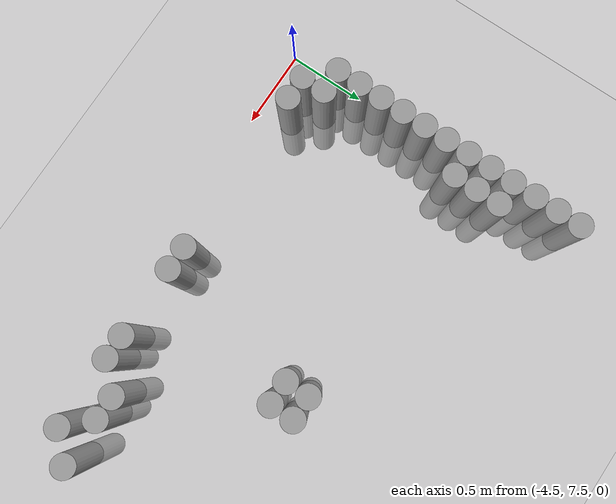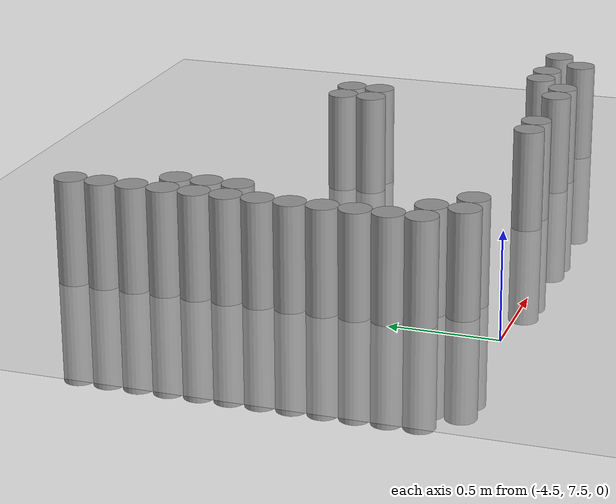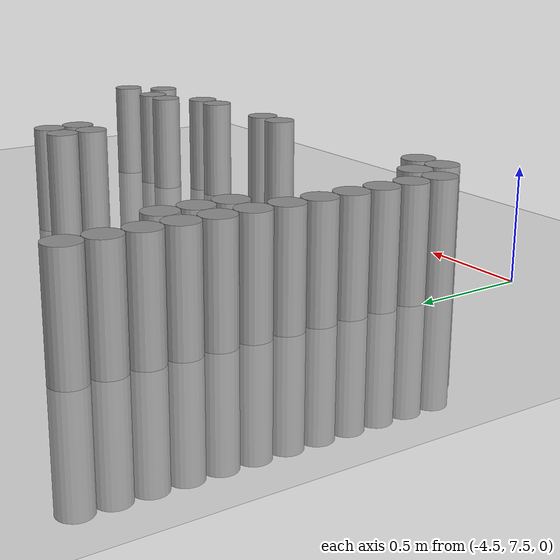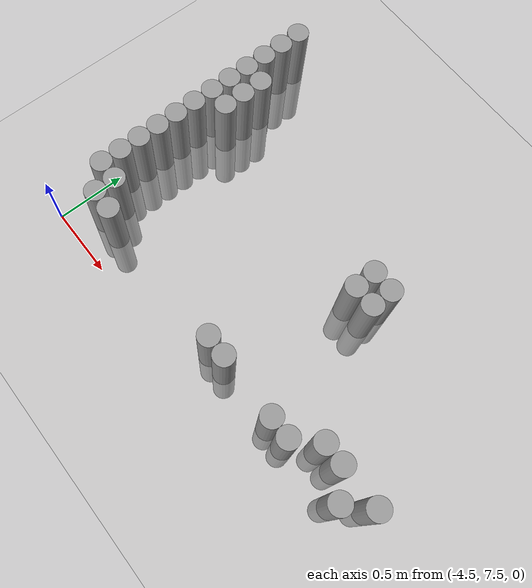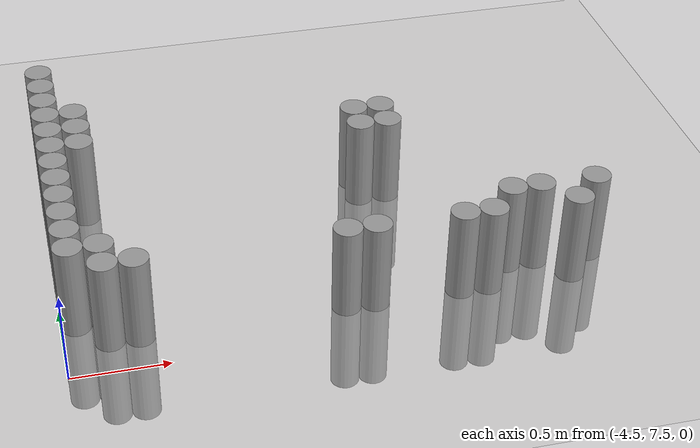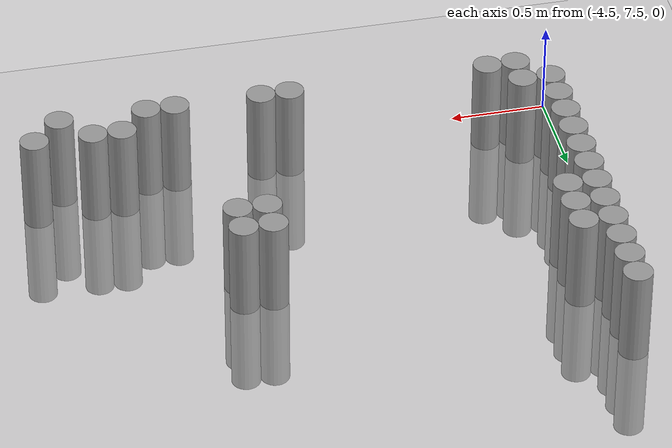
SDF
<sdf version="1.6">
 <world name="default">
  <model name="ground_plane">
   <static>1</static>
   <static>1</static>
   <link name="link">
    <collision name="collision">
     <geometry><plane><normal>0 0 1</normal><size>100 100</size></plane></geometry>
     <surface><friction><ode><mu>100</mu><mu2>50</mu2></ode></friction></surface>
    </collision>
    <visual name="visual">
     <cast_shadows>0</cast_shadows>
     <geometry><plane><normal>0 0 1</normal><size>100 100</size></plane></geometry>
     <material>
      <script><uri>file://media/materials/scripts/gazebo.material</uri><name>Gazebo/Grey</name></script>
     </material>
    </visual>
   </link>
  </model>
  <model name="unit_cylinder_114">
   <static>1</static>
   <pose>-4.425000 7.875000 0.000000 0.000000 0.000000 0.000000</pose>
   <link name="link">
    <inertial>
     <mass>1</mass>
     <inertia><ixx>0.145833</ixx><ixy>0</ixy><ixz>0</ixz><iyy>0.145833</iyy><iyz>0</iyz><izz>0.125</izz></inertia>
    </inertial>
    <collision name="collision">
     <geometry><cylinder><radius>0.075000</radius><length>1</length></cylinder></geometry>
    </collision>
    <visual name="visual">
     <geometry><cylinder><radius>0.075000</radius><length>1</length></cylinder></geometry>
     <material>
      <script><name>Gazebo/Grey</name><uri>file://media/materials/scripts/gazebo.material</uri></script>
     </material>
    </visual>
   </link>
  </model>
  <model name="unit_cylinder_115">
   <static>1</static>
   <pose>-4.425000 8.025000 0.000000 0.000000 0.000000 0.000000</pose>
   <link name="link">
    <inertial>
     <mass>1</mass>
     <inertia><ixx>0.145833</ixx><ixy>0</ixy><ixz>0</ixz><iyy>0.145833</iyy><iyz>0</iyz><izz>0.125</izz></inertia>
    </inertial>
    <collision name="collision">
     <geometry><cylinder><radius>0.075000</radius><length>1</length></cylinder></geometry>
    </collision>
    <visual name="visual">
     <geometry><cylinder><radius>0.075000</radius><length>1</length></cylinder></geometry>
     <material>
      <script><name>Gazebo/Grey</name><uri>file://media/materials/scripts/gazebo.material</uri></script>
     </material>
    </visual>
   </link>
  </model>
  <model name="unit_cylinder_116">
   <static>1</static>
   <pose>-4.425000 8.175000 0.000000 0.000000 0.000000 0.000000</pose>
   <link name="link">
    <inertial>
     <mass>1</mass>
     <inertia><ixx>0.145833</ixx><ixy>0</ixy><ixz>0</ixz><iyy>0.145833</iyy><iyz>0</iyz><izz>0.125</izz></inertia>
    </inertial>
    <collision name="collision">
     <geometry><cylinder><radius>0.075000</radius><length>1</length></cylinder></geometry>
    </collision>
    <visual name="visual">
     <geometry><cylinder><radius>0.075000</radius><length>1</length></cylinder></geometry>
     <material>
      <script><name>Gazebo/Grey</name><uri>file://media/materials/scripts/gazebo.material</uri></script>
     </material>
    </visual>
   </link>
  </model>
  <model name="unit_cylinder_117">
   <static>1</static>
   <pose>-4.425000 8.325000 0.000000 0.000000 0.000000 0.000000</pose>
   <link name="link">
    <inertial>
     <mass>1</mass>
     <inertia><ixx>0.145833</ixx><ixy>0</ixy><ixz>0</ixz><iyy>0.145833</iyy><iyz>0</iyz><izz>0.125</izz></inertia>
    </inertial>
    <collision name="collision">
     <geometry><cylinder><radius>0.075000</radius><length>1</length></cylinder></geometry>
    </collision>
    <visual name="visual">
     <geometry><cylinder><radius>0.075000</radius><length>1</length></cylinder></geometry>
     <material>
      <script><name>Gazebo/Grey</name><uri>file://media/materials/scripts/gazebo.material</uri></script>
     </material>
    </visual>
   </link>
  </model>
  <model name="unit_cylinder_118">
   <static>1</static>
   <pose>-4.425000 8.475000 0.000000 0.000000 0.000000 0.000000</pose>
   <link name="link">
    <inertial>
     <mass>1</mass>
     <inertia><ixx>0.145833</ixx><ixy>0</ixy><ixz>0</ixz><iyy>0.145833</iyy><iyz>0</iyz><izz>0.125</izz></inertia>
    </inertial>
    <collision name="collision">
     <geometry><cylinder><radius>0.075000</radius><length>1</length></cylinder></geometry>
    </collision>
    <visual name="visual">
     <geometry><cylinder><radius>0.075000</radius><length>1</length></cylinder></geometry>
     <material>
      <script><name>Gazebo/Grey</name><uri>file://media/materials/scripts/gazebo.material</uri></script>
     </material>
    </visual>
   </link>
  </model>
  <model name="unit_cylinder_119">
   <static>1</static>
   <pose>-4.425000 8.625000 0.000000 0.000000 0.000000 0.000000</pose>
   <link name="link">
    <inertial>
     <mass>1</mass>
     <inertia><ixx>0.145833</ixx><ixy>0</ixy><ixz>0</ixz><iyy>0.145833</iyy><iyz>0</iyz><izz>0.125</izz></inertia>
    </inertial>
    <collision name="collision">
     <geometry><cylinder><radius>0.075000</radius><length>1</length></cylinder></geometry>
    </collision>
    <visual name="visual">
     <geometry><cylinder><radius>0.075000</radius><length>1</length></cylinder></geometry>
     <material>
      <script><name>Gazebo/Grey</name><uri>file://media/materials/scripts/gazebo.material</uri></script>
     </material>
    </visual>
   </link>
  </model>
  <model name="unit_cylinder_120">
   <static>1</static>
   <pose>-4.425000 8.775000 0.000000 0.000000 0.000000 0.000000</pose>
   <link name="link">
    <inertial>
     <mass>1</mass>
     <inertia><ixx>0.145833</ixx><ixy>0</ixy><ixz>0</ixz><iyy>0.145833</iyy><iyz>0</iyz><izz>0.125</izz></inertia>
    </inertial>
    <collision name="collision">
     <geometry><cylinder><radius>0.075000</radius><length>1</length></cylinder></geometry>
    </collision>
    <visual name="visual">
     <geometry><cylinder><radius>0.075000</radius><length>1</length></cylinder></geometry>
     <material>
      <script><name>Gazebo/Grey</name><uri>file://media/materials/scripts/gazebo.material</uri></script>
     </material>
    </visual>
   </link>
  </model>
  <model name="unit_cylinder_121">
   <static>1</static>
   <pose>-4.425000 8.925000 0.000000 0.000000 0.000000 0.000000</pose>
   <link name="link">
    <inertial>
     <mass>1</mass>
     <inertia><ixx>0.145833</ixx><ixy>0</ixy><ixz>0</ixz><iyy>0.145833</iyy><iyz>0</iyz><izz>0.125</izz></inertia>
    </inertial>
    <collision name="collision">
     <geometry><cylinder><radius>0.075000</radius><length>1</length></cylinder></geometry>
    </collision>
    <visual name="visual">
     <geometry><cylinder><radius>0.075000</radius><length>1</length></cylinder></geometry>
     <material>
      <script><name>Gazebo/Grey</name><uri>file://media/materials/scripts/gazebo.material</uri></script>
     </material>
    </visual>
   </link>
  </model>
  <model name="unit_cylinder_122">
   <static>1</static>
   <pose>-4.425000 9.075000 0.000000 0.000000 0.000000 0.000000</pose>
   <link name="link">
    <inertial>
     <mass>1</mass>
     <inertia><ixx>0.145833</ixx><ixy>0</ixy><ixz>0</ixz><iyy>0.145833</iyy><iyz>0</iyz><izz>0.125</izz></inertia>
    </inertial>
    <collision name="collision">
     <geometry><cylinder><radius>0.075000</radius><length>1</length></cylinder></geometry>
    </collision>
    <visual name="visual">
     <geometry><cylinder><radius>0.075000</radius><length>1</length></cylinder></geometry>
     <material>
      <script><name>Gazebo/Grey</name><uri>file://media/materials/scripts/gazebo.material</uri></script>
     </material>
    </visual>
   </link>
  </model>
  <model name="unit_cylinder_123">
   <static>1</static>
   <pose>-4.425000 9.225000 0.000000 0.000000 0.000000 0.000000</pose>
   <link name="link">
    <inertial>
     <mass>1</mass>
     <inertia><ixx>0.145833</ixx><ixy>0</ixy><ixz>0</ixz><iyy>0.145833</iyy><iyz>0</iyz><izz>0.125</izz></inertia>
    </inertial>
    <collision name="collision">
     <geometry><cylinder><radius>0.075000</radius><length>1</length></cylinder></geometry>
    </collision>
    <visual name="visual">
     <geometry><cylinder><radius>0.075000</radius><length>1</length></cylinder></geometry>
     <material>
      <script><name>Gazebo/Grey</name><uri>file://media/materials/scripts/gazebo.material</uri></script>
     </material>
    </visual>
   </link>
  </model>
  <model name="unit_cylinder_124">
   <static>1</static>
   <pose>-4.425000 9.375000 0.000000 0.000000 0.000000 0.000000</pose>
   <link name="link">
    <inertial>
     <mass>1</mass>
     <inertia><ixx>0.145833</ixx><ixy>0</ixy><ixz>0</ixz><iyy>0.145833</iyy><iyz>0</iyz><izz>0.125</izz></inertia>
    </inertial>
    <collision name="collision">
     <geometry><cylinder><radius>0.075000</radius><length>1</length></cylinder></geometry>
    </collision>
    <visual name="visual">
     <geometry><cylinder><radius>0.075000</radius><length>1</length></cylinder></geometry>
     <material>
      <script><name>Gazebo/Grey</name><uri>file://media/materials/scripts/gazebo.material</uri></script>
     </material>
    </visual>
   </link>
  </model>
  <model name="unit_cylinder_125">
   <static>1</static>
   <pose>-4.425000 9.525000 0.000000 0.000000 0.000000 0.000000</pose>
   <link name="link">
    <inertial>
     <mass>1</mass>
     <inertia><ixx>0.145833</ixx><ixy>0</ixy><ixz>0</ixz><iyy>0.145833</iyy><iyz>0</iyz><izz>0.125</izz></inertia>
    </inertial>
    <collision name="collision">
     <geometry><cylinder><radius>0.075000</radius><length>1</length></cylinder></geometry>
    </collision>
    <visual name="visual">
     <geometry><cylinder><radius>0.075000</radius><length>1</length></cylinder></geometry>
     <material>
      <script><name>Gazebo/Grey</name><uri>file://media/materials/scripts/gazebo.material</uri></script>
     </material>
    </visual>
   </link>
  </model>
  <model name="unit_cylinder_132">
   <static>1</static>
   <pose>-4.275000 7.725000 0.000000 0.000000 0.000000 0.000000</pose>
   <link name="link">
    <inertial>
     <mass>1</mass>
     <inertia><ixx>0.145833</ixx><ixy>0</ixy><ixz>0</ixz><iyy>0.145833</iyy><iyz>0</iyz><izz>0.125</izz></inertia>
    </inertial>
    <collision name="collision">
     <geometry><cylinder><radius>0.075000</radius><length>1</length></cylinder></geometry>
    </collision>
    <visual name="visual">
     <geometry><cylinder><radius>0.075000</radius><length>1</length></cylinder></geometry>
     <material>
      <script><name>Gazebo/Grey</name><uri>file://media/materials/scripts/gazebo.material</uri></script>
     </material>
    </visual>
   </link>
  </model>
  <model name="unit_cylinder_133">
   <static>1</static>
   <pose>-4.275000 7.875000 0.000000 0.000000 0.000000 0.000000</pose>
   <link name="link">
    <inertial>
     <mass>1</mass>
     <inertia><ixx>0.145833</ixx><ixy>0</ixy><ixz>0</ixz><iyy>0.145833</iyy><iyz>0</iyz><izz>0.125</izz></inertia>
    </inertial>
    <collision name="collision">
     <geometry><cylinder><radius>0.075000</radius><length>1</length></cylinder></geometry>
    </collision>
    <visual name="visual">
     <geometry><cylinder><radius>0.075000</radius><length>1</length></cylinder></geometry>
     <material>
      <script><name>Gazebo/Grey</name><uri>file://media/materials/scripts/gazebo.material</uri></script>
     </material>
    </visual>
   </link>
  </model>
  <model name="unit_cylinder_134">
   <static>1</static>
   <pose>-4.275000 8.775000 0.000000 0.000000 0.000000 0.000000</pose>
   <link name="link">
    <inertial>
     <mass>1</mass>
     <inertia><ixx>0.145833</ixx><ixy>0</ixy><ixz>0</ixz><iyy>0.145833</iyy><iyz>0</iyz><izz>0.125</izz></inertia>
    </inertial>
    <collision name="collision">
     <geometry><cylinder><radius>0.075000</radius><length>1</length></cylinder></geometry>
    </collision>
    <visual name="visual">
     <geometry><cylinder><radius>0.075000</radius><length>1</length></cylinder></geometry>
     <material>
      <script><name>Gazebo/Grey</name><uri>file://media/materials/scripts/gazebo.material</uri></script>
     </material>
    </visual>
   </link>
  </model>
  <model name="unit_cylinder_135">
   <static>1</static>
   <pose>-4.275000 8.925000 0.000000 0.000000 0.000000 0.000000</pose>
   <link name="link">
    <inertial>
     <mass>1</mass>
     <inertia><ixx>0.145833</ixx><ixy>0</ixy><ixz>0</ixz><iyy>0.145833</iyy><iyz>0</iyz><izz>0.125</izz></inertia>
    </inertial>
    <collision name="collision">
     <geometry><cylinder><radius>0.075000</radius><length>1</length></cylinder></geometry>
    </collision>
    <visual name="visual">
     <geometry><cylinder><radius>0.075000</radius><length>1</length></cylinder></geometry>
     <material>
      <script><name>Gazebo/Grey</name><uri>file://media/materials/scripts/gazebo.material</uri></script>
     </material>
    </visual>
   </link>
  </model>
  <model name="unit_cylinder_136">
   <static>1</static>
   <pose>-4.275000 9.075000 0.000000 0.000000 0.000000 0.000000</pose>
   <link name="link">
    <inertial>
     <mass>1</mass>
     <inertia><ixx>0.145833</ixx><ixy>0</ixy><ixz>0</ixz><iyy>0.145833</iyy><iyz>0</iyz><izz>0.125</izz></inertia>
    </inertial>
    <collision name="collision">
     <geometry><cylinder><radius>0.075000</radius><length>1</length></cylinder></geometry>
    </collision>
    <visual name="visual">
     <geometry><cylinder><radius>0.075000</radius><length>1</length></cylinder></geometry>
     <material>
      <script><name>Gazebo/Grey</name><uri>file://media/materials/scripts/gazebo.material</uri></script>
     </material>
    </visual>
   </link>
  </model>
  <model name="unit_cylinder_139">
   <static>1</static>
   <pose>-4.125000 7.725000 0.000000 0.000000 0.000000 0.000000</pose>
   <link name="link">
    <inertial>
     <mass>1</mass>
     <inertia><ixx>0.145833</ixx><ixy>0</ixy><ixz>0</ixz><iyy>0.145833</iyy><iyz>0</iyz><izz>0.125</izz></inertia>
    </inertial>
    <collision name="collision">
     <geometry><cylinder><radius>0.075000</radius><length>1</length></cylinder></geometry>
    </collision>
    <visual name="visual">
     <geometry><cylinder><radius>0.075000</radius><length>1</length></cylinder></geometry>
     <material>
      <script><name>Gazebo/Grey</name><uri>file://media/materials/scripts/gazebo.material</uri></script>
     </material>
    </visual>
   </link>
  </model>
  <model name="unit_cylinder_142">
   <static>1</static>
   <pose>-3.075000 7.725000 0.000000 0.000000 0.000000 0.000000</pose>
   <link name="link">
    <inertial>
     <mass>1</mass>
     <inertia><ixx>0.145833</ixx><ixy>0</ixy><ixz>0</ixz><iyy>0.145833</iyy><iyz>0</iyz><izz>0.125</izz></inertia>
    </inertial>
    <collision name="collision">
     <geometry><cylinder><radius>0.075000</radius><length>1</length></cylinder></geometry>
    </collision>
    <visual name="visual">
     <geometry><cylinder><radius>0.075000</radius><length>1</length></cylinder></geometry>
     <material>
      <script><name>Gazebo/Grey</name><uri>file://media/materials/scripts/gazebo.material</uri></script>
     </material>
    </visual>
   </link>
  </model>
  <model name="unit_cylinder_143">
   <static>1</static>
   <pose>-2.925000 7.725000 0.000000 0.000000 0.000000 0.000000</pose>
   <link name="link">
    <inertial>
     <mass>1</mass>
     <inertia><ixx>0.145833</ixx><ixy>0</ixy><ixz>0</ixz><iyy>0.145833</iyy><iyz>0</iyz><izz>0.125</izz></inertia>
    </inertial>
    <collision name="collision">
     <geometry><cylinder><radius>0.075000</radius><length>1</length></cylinder></geometry>
    </collision>
    <visual name="visual">
     <geometry><cylinder><radius>0.075000</radius><length>1</length></cylinder></geometry>
     <material>
      <script><name>Gazebo/Grey</name><uri>file://media/materials/scripts/gazebo.material</uri></script>
     </material>
    </visual>
   </link>
  </model>
  <model name="unit_cylinder_147">
   <static>1</static>
   <pose>-2.775000 8.625000 0.000000 0.000000 0.000000 0.000000</pose>
   <link name="link">
    <inertial>
     <mass>1</mass>
     <inertia><ixx>0.145833</ixx><ixy>0</ixy><ixz>0</ixz><iyy>0.145833</iyy><iyz>0</iyz><izz>0.125</izz></inertia>
    </inertial>
    <collision name="collision">
     <geometry><cylinder><radius>0.075000</radius><length>1</length></cylinder></geometry>
    </collision>
    <visual name="visual">
     <geometry><cylinder><radius>0.075000</radius><length>1</length></cylinder></geometry>
     <material>
      <script><name>Gazebo/Grey</name><uri>file://media/materials/scripts/gazebo.material</uri></script>
     </material>
    </visual>
   </link>
  </model>
  <model name="unit_cylinder_148">
   <static>1</static>
   <pose>-2.775000 8.775000 0.000000 0.000000 0.000000 0.000000</pose>
   <link name="link">
    <inertial>
     <mass>1</mass>
     <inertia><ixx>0.145833</ixx><ixy>0</ixy><ixz>0</ixz><iyy>0.145833</iyy><iyz>0</iyz><izz>0.125</izz></inertia>
    </inertial>
    <collision name="collision">
     <geometry><cylinder><radius>0.075000</radius><length>1</length></cylinder></geometry>
    </collision>
    <visual name="visual">
     <geometry><cylinder><radius>0.075000</radius><length>1</length></cylinder></geometry>
     <material>
      <script><name>Gazebo/Grey</name><uri>file://media/materials/scripts/gazebo.material</uri></script>
     </material>
    </visual>
   </link>
  </model>
  <model name="unit_cylinder_153">
   <static>1</static>
   <pose>-2.625000 8.625000 0.000000 0.000000 0.000000 0.000000</pose>
   <link name="link">
    <inertial>
     <mass>1</mass>
     <inertia><ixx>0.145833</ixx><ixy>0</ixy><ixz>0</ixz><iyy>0.145833</iyy><iyz>0</iyz><izz>0.125</izz></inertia>
    </inertial>
    <collision name="collision">
     <geometry><cylinder><radius>0.075000</radius><length>1</length></cylinder></geometry>
    </collision>
    <visual name="visual">
     <geometry><cylinder><radius>0.075000</radius><length>1</length></cylinder></geometry>
     <material>
      <script><name>Gazebo/Grey</name><uri>file://media/materials/scripts/gazebo.material</uri></script>
     </material>
    </visual>
   </link>
  </model>
  <model name="unit_cylinder_154">
   <static>1</static>
   <pose>-2.625000 8.775000 0.000000 0.000000 0.000000 0.000000</pose>
   <link name="link">
    <inertial>
     <mass>1</mass>
     <inertia><ixx>0.145833</ixx><ixy>0</ixy><ixz>0</ixz><iyy>0.145833</iyy><iyz>0</iyz><izz>0.125</izz></inertia>
    </inertial>
    <collision name="collision">
     <geometry><cylinder><radius>0.075000</radius><length>1</length></cylinder></geometry>
    </collision>
    <visual name="visual">
     <geometry><cylinder><radius>0.075000</radius><length>1</length></cylinder></geometry>
     <material>
      <script><name>Gazebo/Grey</name><uri>file://media/materials/scripts/gazebo.material</uri></script>
     </material>
    </visual>
   </link>
  </model>
  <model name="unit_cylinder_157">
   <static>1</static>
   <pose>-2.475000 7.725000 0.000000 0.000000 0.000000 0.000000</pose>
   <link name="link">
    <inertial>
     <mass>1</mass>
     <inertia><ixx>0.145833</ixx><ixy>0</ixy><ixz>0</ixz><iyy>0.145833</iyy><iyz>0</iyz><izz>0.125</izz></inertia>
    </inertial>
    <collision name="collision">
     <geometry><cylinder><radius>0.075000</radius><length>1</length></cylinder></geometry>
    </collision>
    <visual name="visual">
     <geometry><cylinder><radius>0.075000</radius><length>1</length></cylinder></geometry>
     <material>
      <script><name>Gazebo/Grey</name><uri>file://media/materials/scripts/gazebo.material</uri></script>
     </material>
    </visual>
   </link>
  </model>
  <model name="unit_cylinder_162">
   <static>1</static>
   <pose>-2.325000 7.725000 0.000000 0.000000 0.000000 0.000000</pose>
   <link name="link">
    <inertial>
     <mass>1</mass>
     <inertia><ixx>0.145833</ixx><ixy>0</ixy><ixz>0</ixz><iyy>0.145833</iyy><iyz>0</iyz><izz>0.125</izz></inertia>
    </inertial>
    <collision name="collision">
     <geometry><cylinder><radius>0.075000</radius><length>1</length></cylinder></geometry>
    </collision>
    <visual name="visual">
     <geometry><cylinder><radius>0.075000</radius><length>1</length></cylinder></geometry>
     <material>
      <script><name>Gazebo/Grey</name><uri>file://media/materials/scripts/gazebo.material</uri></script>
     </material>
    </visual>
   </link>
  </model>
  <model name="unit_cylinder_164">
   <static>1</static>
   <pose>-2.175000 7.875000 0.000000 0.000000 0.000000 0.000000</pose>
   <link name="link">
    <inertial>
     <mass>1</mass>
     <inertia><ixx>0.145833</ixx><ixy>0</ixy><ixz>0</ixz><iyy>0.145833</iyy><iyz>0</iyz><izz>0.125</izz></inertia>
    </inertial>
    <collision name="collision">
     <geometry><cylinder><radius>0.075000</radius><length>1</length></cylinder></geometry>
    </collision>
    <visual name="visual">
     <geometry><cylinder><radius>0.075000</radius><length>1</length></cylinder></geometry>
     <material>
      <script><name>Gazebo/Grey</name><uri>file://media/materials/scripts/gazebo.material</uri></script>
     </material>
    </visual>
   </link>
  </model>
  <model name="unit_cylinder_165">
   <static>1</static>
   <pose>-2.025000 7.875000 0.000000 0.000000 0.000000 0.000000</pose>
   <link name="link">
    <inertial>
     <mass>1</mass>
     <inertia><ixx>0.145833</ixx><ixy>0</ixy><ixz>0</ixz><iyy>0.145833</iyy><iyz>0</iyz><izz>0.125</izz></inertia>
    </inertial>
    <collision name="collision">
     <geometry><cylinder><radius>0.075000</radius><length>1</length></cylinder></geometry>
    </collision>
    <visual name="visual">
     <geometry><cylinder><radius>0.075000</radius><length>1</length></cylinder></geometry>
     <material>
      <script><name>Gazebo/Grey</name><uri>file://media/materials/scripts/gazebo.material</uri></script>
     </material>
    </visual>
   </link>
  </model>
  <model name="unit_cylinder_166">
   <static>1</static>
   <pose>-1.875000 7.725000 0.000000 0.000000 0.000000 0.000000</pose>
   <link name="link">
    <inertial>
     <mass>1</mass>
     <inertia><ixx>0.145833</ixx><ixy>0</ixy><ixz>0</ixz><iyy>0.145833</iyy><iyz>0</iyz><izz>0.125</izz></inertia>
    </inertial>
    <collision name="collision">
     <geometry><cylinder><radius>0.075000</radius><length>1</length></cylinder></geometry>
    </collision>
    <visual name="visual">
     <geometry><cylinder><radius>0.075000</radius><length>1</length></cylinder></geometry>
     <material>
      <script><name>Gazebo/Grey</name><uri>file://media/materials/scripts/gazebo.material</uri></script>
     </material>
    </visual>
   </link>
  </model>
  <model name="unit_cylinder_167">
   <static>1</static>
   <pose>-1.725000 7.875000 0.000000 0.000000 0.000000 0.000000</pose>
   <link name="link">
    <inertial>
     <mass>1</mass>
     <inertia><ixx>0.145833</ixx><ixy>0</ixy><ixz>0</ixz><iyy>0.145833</iyy><iyz>0</iyz><izz>0.125</izz></inertia>
    </inertial>
    <collision name="collision">
     <geometry><cylinder><radius>0.075000</radius><length>1</length></cylinder></geometry>
    </collision>
    <visual name="visual">
     <geometry><cylinder><radius>0.075000</radius><length>1</length></cylinder></geometry>
     <material>
      <script><name>Gazebo/Grey</name><uri>file://media/materials/scripts/gazebo.material</uri></script>
     </material>
    </visual>
   </link>
  </model>
 </world>
</sdf>
